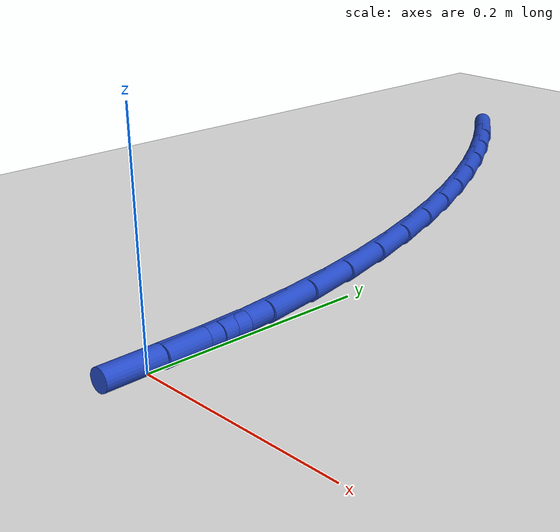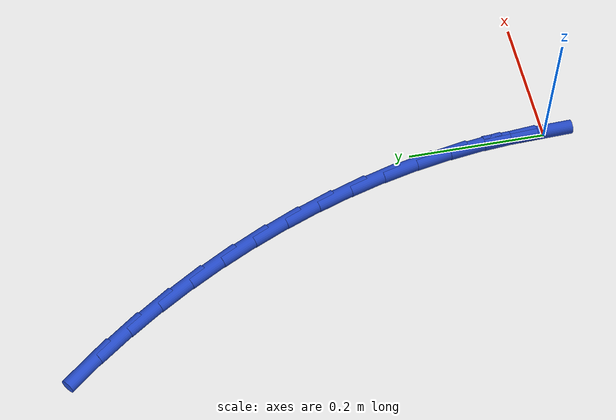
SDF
<sdf version="1.6">
 <world name="default">
  <model name="ground_plane">
   <static>1</static>
   <link name="link">
    <collision name="collision">
     <geometry><plane><normal>0 0 1</normal><size>100 100</size></plane></geometry>
     <surface><friction><ode><mu>100</mu><mu2>50</mu2></ode></friction></surface>
    </collision>
    <visual name="visual">
     <cast_shadows>0</cast_shadows>
     <geometry><plane><normal>0 0 1</normal><size>100 100</size></plane></geometry>
     <material>
      <script><uri>file://media/materials/scripts/gazebo.material</uri><name>Gazebo/WhiteGlow</name></script>
     </material>
    </visual>
   </link>
  </model>
  <model name="line">
   <link name="link_0">
    <pose>4.683753385137379e-17 1.3877787807814457e-17 0.01 0 1.57 -1.5360429336169377</pose>
    <collision name="collision">
     <geometry><cylinder><radius>0.01</radius><length>0.08</length></cylinder></geometry>
    </collision>
    <visual name="visual">
     <material>
      <script><name>Gazebo/Blue</name><uri>file://media/materials/scripts/gazebo.material</uri></script>
     </material>
     <geometry><cylinder><radius>0.01</radius><length>0.08</length></cylinder></geometry>
    </visual>
   </link>
   <link name="link_1">
    <pose>-0.0018193067218510133 0.05232796123466718 0.01 0 1.57 -1.4827932212851813</pose>
    <collision name="collision">
     <geometry><cylinder><radius>0.01</radius><length>0.08</length></cylinder></geometry>
    </collision>
    <visual name="visual">
     <material>
      <script><name>Gazebo/Blue</name><uri>file://media/materials/scripts/gazebo.material</uri></script>
     </material>
     <geometry><cylinder><radius>0.01</radius><length>0.08</length></cylinder></geometry>
    </visual>
   </link>
   <link name="link_2">
    <pose>-0.006411723424535215 0.10437788783255485 0.01 0 1.57 -1.4306784395308845</pose>
    <collision name="collision">
     <geometry><cylinder><radius>0.01</radius><length>0.08</length></cylinder></geometry>
    </collision>
    <visual name="visual">
     <material>
      <script><name>Gazebo/Blue</name><uri>file://media/materials/scripts/gazebo.material</uri></script>
     </material>
     <geometry><cylinder><radius>0.01</radius><length>0.08</length></cylinder></geometry>
    </visual>
   </link>
   <link name="link_3">
    <pose>-0.01370482892934836 0.1560865917753598 0.01 0 1.57 -1.379771381626556</pose>
    <collision name="collision">
     <geometry><cylinder><radius>0.01</radius><length>0.08</length></cylinder></geometry>
    </collision>
    <visual name="visual">
     <material>
      <script><name>Gazebo/Blue</name><uri>file://media/materials/scripts/gazebo.material</uri></script>
     </material>
     <geometry><cylinder><radius>0.01</radius><length>0.08</length></cylinder></geometry>
    </visual>
   </link>
   <link name="link_4">
    <pose>-0.023626202057586237 0.2073908850447789 0.01 0 1.57 -1.3301165858426365</pose>
    <collision name="collision">
     <geometry><cylinder><radius>0.01</radius><length>0.08</length></cylinder></geometry>
    </collision>
    <visual name="visual">
     <material>
      <script><name>Gazebo/Blue</name><uri>file://media/materials/scripts/gazebo.material</uri></script>
     </material>
     <geometry><cylinder><radius>0.01</radius><length>0.08</length></cylinder></geometry>
    </visual>
   </link>
   <link name="link_5">
    <pose>-0.03610342163054464 0.2582275796225089 0.01 0 1.57 -1.2817326233226591</pose>
    <collision name="collision">
     <geometry><cylinder><radius>0.01</radius><length>0.08</length></cylinder></geometry>
    </collision>
    <visual name="visual">
     <material>
      <script><name>Gazebo/Blue</name><uri>file://media/materials/scripts/gazebo.material</uri></script>
     </material>
     <geometry><cylinder><radius>0.01</radius><length>0.08</length></cylinder></geometry>
    </visual>
   </link>
   <link name="link_6">
    <pose>-0.05106406646951937 0.3085334874902466 0.01 0 1.57 -1.2346149054799376</pose>
    <collision name="collision">
     <geometry><cylinder><radius>0.01</radius><length>0.08</length></cylinder></geometry>
    </collision>
    <visual name="visual">
     <material>
      <script><name>Gazebo/Blue</name><uri>file://media/materials/scripts/gazebo.material</uri></script>
     </material>
     <geometry><cylinder><radius>0.01</radius><length>0.08</length></cylinder></geometry>
    </visual>
   </link>
   <link name="link_7">
    <pose>-0.06843571539580623 0.3582454206296889 0.01 0 1.57 -1.1887387489372967</pose>
    <collision name="collision">
     <geometry><cylinder><radius>0.01</radius><length>0.08</length></cylinder></geometry>
    </collision>
    <visual name="visual">
     <material>
      <script><name>Gazebo/Blue</name><uri>file://media/materials/scripts/gazebo.material</uri></script>
     </material>
     <geometry><cylinder><radius>0.01</radius><length>0.08</length></cylinder></geometry>
    </visual>
   </link>
   <link name="link_8">
    <pose>-0.08814594723070102 0.40730019102253257 0.01 0 1.57 -1.1440624819460676</pose>
    <collision name="collision">
     <geometry><cylinder><radius>0.01</radius><length>0.08</length></cylinder></geometry>
    </collision>
    <visual name="visual">
     <material>
      <script><name>Gazebo/Blue</name><uri>file://media/materials/scripts/gazebo.material</uri></script>
     </material>
     <geometry><cylinder><radius>0.01</radius><length>0.08</length></cylinder></geometry>
    </visual>
   </link>
   <link name="link_9">
    <pose>-0.1101223407954995 0.4556346106504744 0.01 0 1.57 -1.1004363382186289</pose>
    <collision name="collision">
     <geometry><cylinder><radius>0.01</radius><length>0.08</length></cylinder></geometry>
    </collision>
    <visual name="visual">
     <material>
      <script><name>Gazebo/Blue</name><uri>file://media/materials/scripts/gazebo.material</uri></script>
     </material>
     <geometry><cylinder><radius>0.01</radius><length>0.08</length></cylinder></geometry>
    </visual>
   </link>
   <link name="link_10">
    <pose>-0.1342932439774856 0.5031759299539461 0.01 0 1.57 -1.0570585516988071</pose>
    <collision name="collision">
     <geometry><cylinder><radius>0.01</radius><length>0.08</length></cylinder></geometry>
    </collision>
    <visual name="visual">
     <material>
      <script><name>Gazebo/Blue</name><uri>file://media/materials/scripts/gazebo.material</uri></script>
     </material>
     <geometry><cylinder><radius>0.01</radius><length>0.08</length></cylinder></geometry>
    </visual>
   </link>
   <link name="link_11">
    <pose>-0.16059250646785636 0.5497829972778924 0.01 0 1.57 -1.013380015811404</pose>
    <collision name="collision">
     <geometry><cylinder><radius>0.01</radius><length>0.08</length></cylinder></geometry>
    </collision>
    <visual name="visual">
     <material>
      <script><name>Gazebo/Blue</name><uri>file://media/materials/scripts/gazebo.material</uri></script>
     </material>
     <geometry><cylinder><radius>0.01</radius><length>0.08</length></cylinder></geometry>
    </visual>
   </link>
   <link name="link_12">
    <pose>-0.18895637439565124 0.5952848668537817 0.01 0 1.57 -0.9691291324374759</pose>
    <collision name="collision">
     <geometry><cylinder><radius>0.01</radius><length>0.08</length></cylinder></geometry>
    </collision>
    <visual name="visual">
     <material>
      <script><name>Gazebo/Blue</name><uri>file://media/materials/scripts/gazebo.material</uri></script>
     </material>
     <geometry><cylinder><radius>0.01</radius><length>0.08</length></cylinder></geometry>
    </visual>
   </link>
   <link name="link_13">
    <pose>-0.21932110378213446 0.6395104699263467 0.01 0 1.57 -0.9240395450659854</pose>
    <collision name="collision">
     <geometry><cylinder><radius>0.01</radius><length>0.08</length></cylinder></geometry>
    </collision>
    <visual name="visual">
     <material>
      <script><name>Gazebo/Blue</name><uri>file://media/materials/scripts/gazebo.material</uri></script>
     </material>
     <geometry><cylinder><radius>0.01</radius><length>0.08</length></cylinder></geometry>
    </visual>
   </link>
   <link name="link_14">
    <pose>-0.25162295064857026 0.6822887377403208 0.01 0 1.57 -0.8778482201294057</pose>
    <collision name="collision">
     <geometry><cylinder><radius>0.01</radius><length>0.08</length></cylinder></geometry>
    </collision>
    <visual name="visual">
     <material>
      <script><name>Gazebo/Blue</name><uri>file://media/materials/scripts/gazebo.material</uri></script>
     </material>
     <geometry><cylinder><radius>0.01</radius><length>0.08</length></cylinder></geometry>
    </visual>
   </link>
   <link name="link_131">
    <pose>-0.0018337704464952871 0.052304582486964804 0.01 0 1.57 -1.5357512202859391</pose>
    <collision name="collision">
     <geometry><cylinder><radius>0.01</radius><length>0.08</length></cylinder></geometry>
    </collision>
    <visual name="visual">
     <material>
      <script><name>Gazebo/Blue</name><uri>file://media/materials/scripts/gazebo.material</uri></script>
     </material>
     <geometry><cylinder><radius>0.01</radius><length>0.08</length></cylinder></geometry>
    </visual>
   </link>
  </model>
 </world>
</sdf>
